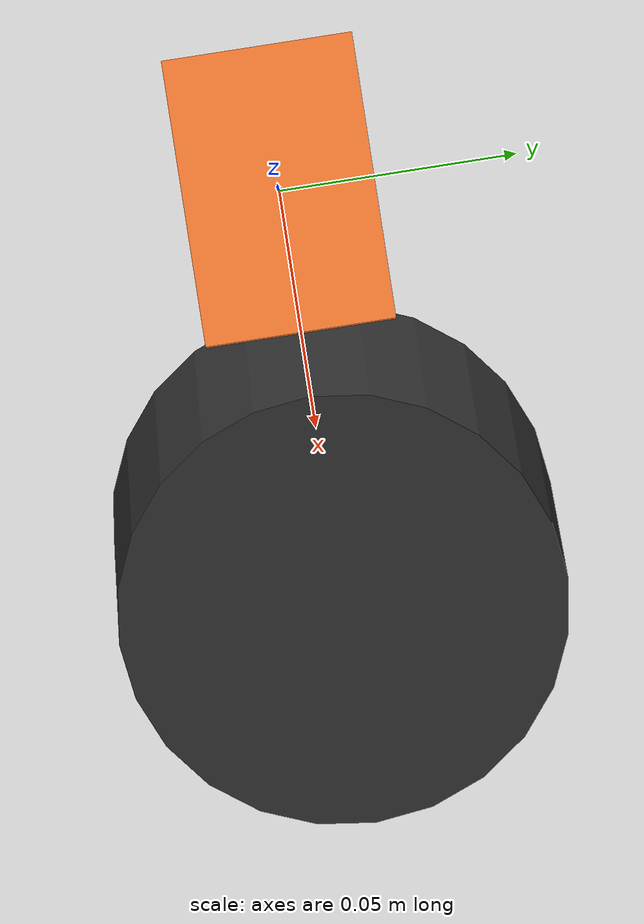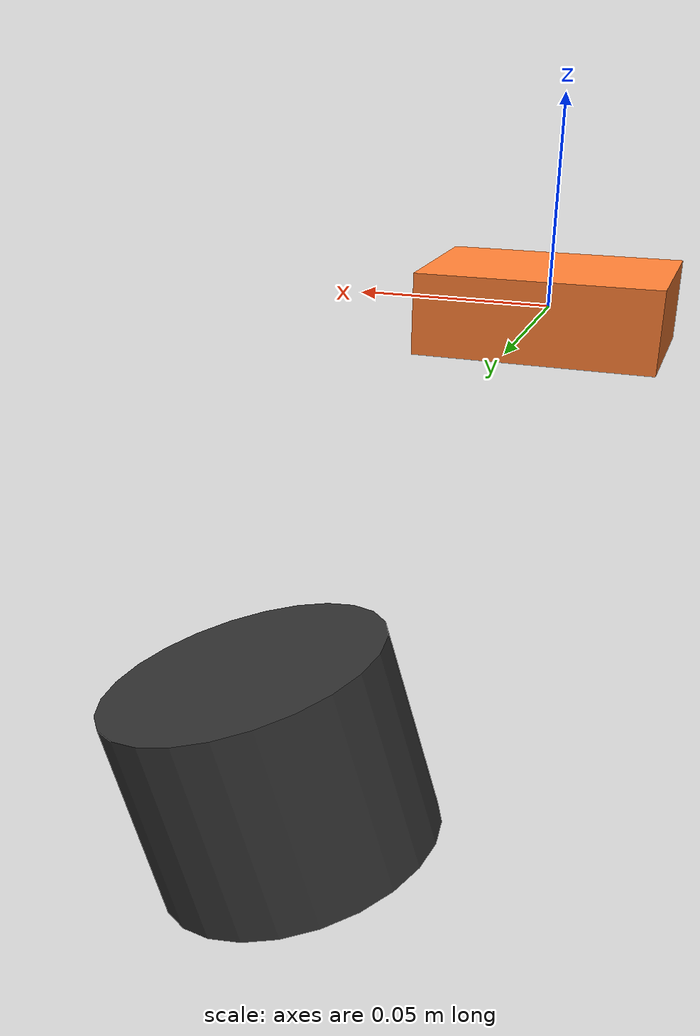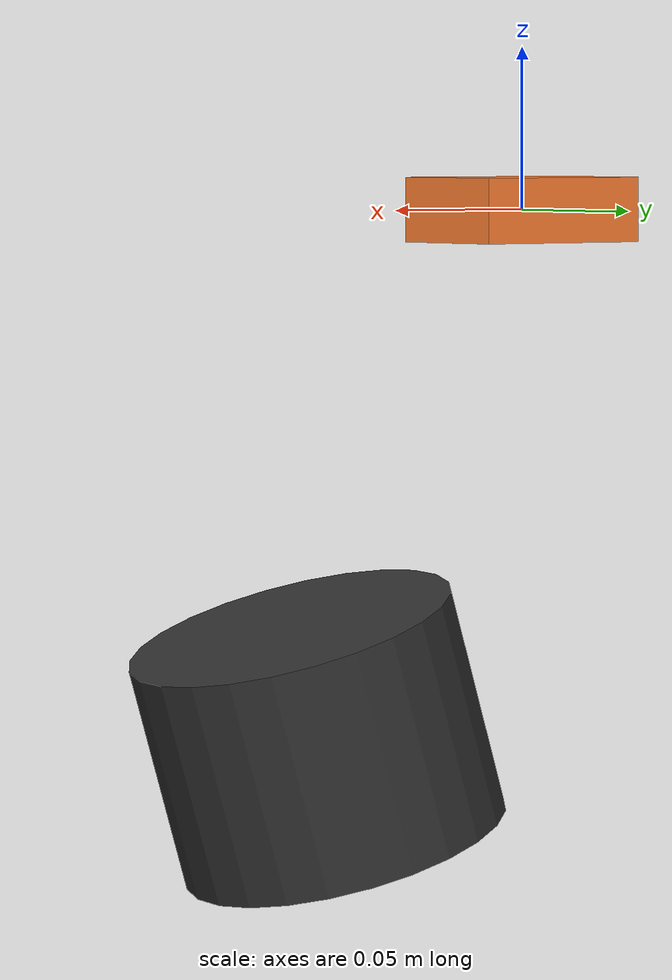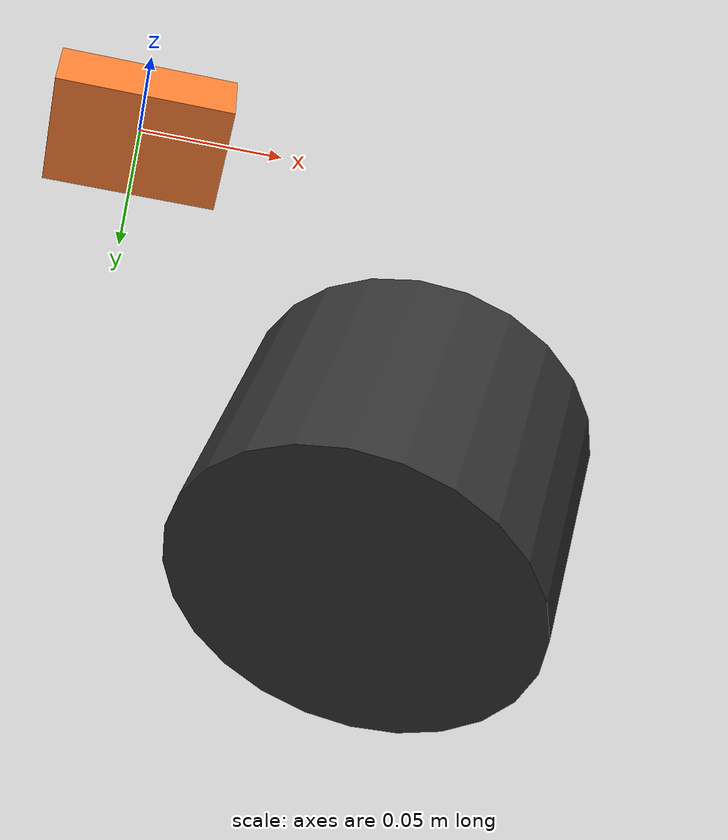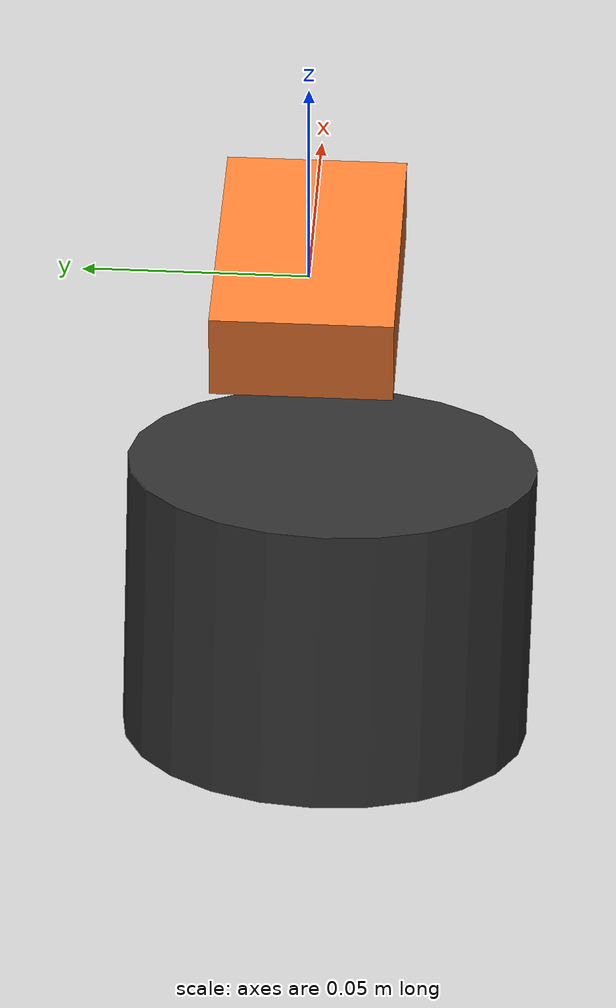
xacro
<?xml version="1.0"?>
<robot name="danieli-drone" xmlns:xacro="http://ros.org/wiki/xacro">
  <xacro:arg name="namespace" default="none"/>
  <xacro:property name="namespace" value="$(arg namespace)" />

  <material name="orange">
    <color rgba="1.0 0.5 0.2 1" />
  </material>
  <material name="gray">
    <color rgba="0.2 0.2 0.2 1" />
  </material>

  <link name="${namespace}/imu_link">
    <visual>
      <origin xyz="0.0 0.0 0.0" />
      <geometry>
        <box size="0.06 0.04 0.02" />
      </geometry>
      <material name="orange" />
    </visual>
  </link>

  <link name="os_imu">
    <visual>
      <origin xyz="0.0 0.0 0.0" />
      <geometry>
        <box size="0.06 0.04 0.02" />
      </geometry>
      <material name="orange" />
    </visual>
  </link>

  <link name="os_lidar">
    <visual>
      <origin xyz="0.0 0.0 0.0" />
      <geometry>
        <cylinder length="0.07" radius="0.05" />
      </geometry>
      <material name="gray" />
    </visual>
  </link>

  <link name="${namespace}/base_link" />

  <joint name="${namespace}/imu_link_joint" type="fixed">
    <parent link="${namespace}/base_link" />
    <child link="${namespace}/imu_link" />
    <origin xyz="0 0 0" rpy="0 0 0" />
  </joint>

  <joint name="${namespace}/ouster_link_joint" type="fixed">
    <parent link="${namespace}/base_link" />
    <child link="os_lidar" />
    <origin xyz="0.08 0. -0.1578" rpy="3.151592653589793 0.3023284641020683 0." />
  </joint>

  <joint name="${namespace}/os_imu_link_joint" type="fixed">
    <parent link="os_lidar" />
    <child link="os_imu" />
    <origin xyz="0 0 0" rpy="0 0 0" />
  </joint>

</robot>
